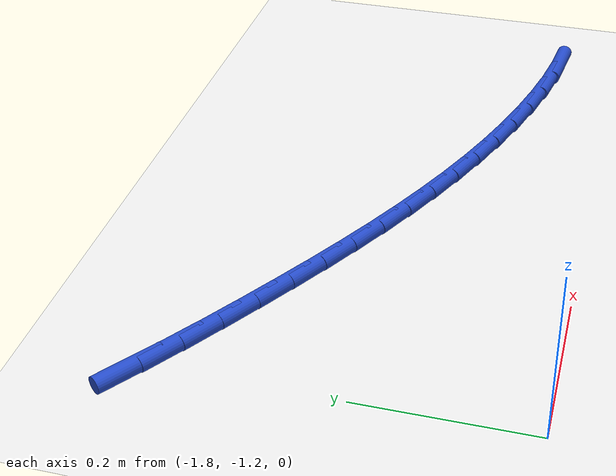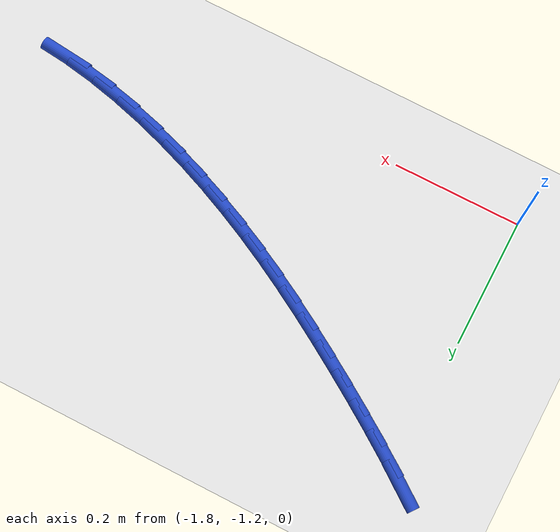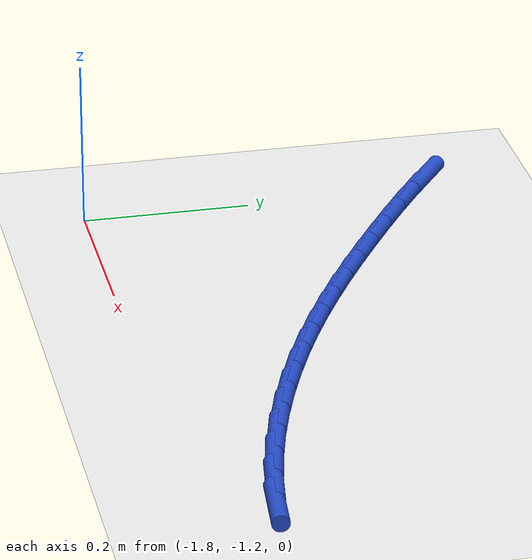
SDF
<sdf version="1.6">
 <world name="default">
  <model name="ground_plane">
   <static>1</static>
   <link name="link">
    <collision name="collision">
     <geometry><plane><normal>0 0 1</normal><size>100 100</size></plane></geometry>
     <surface><friction><ode><mu>100</mu><mu2>50</mu2></ode></friction></surface>
    </collision>
    <visual name="visual">
     <cast_shadows>0</cast_shadows>
     <geometry><plane><normal>0 0 1</normal><size>100 100</size></plane></geometry>
     <material>
      <script><uri>file://media/materials/scripts/gazebo.material</uri><name>Gazebo/WhiteGlow</name></script>
     </material>
    </visual>
   </link>
  </model>
  <model name="line">
   <link name="link_87">
    <pose>-1.8162031321704577 -0.7763112333776243 0.01 0 1.57 -0.6291660363744604</pose>
    <collision name="collision">
     <geometry><cylinder><radius>0.01</radius><length>0.08</length></cylinder></geometry>
    </collision>
    <visual name="visual">
     <material>
      <script><name>Gazebo/Blue</name><uri>file://media/materials/scripts/gazebo.material</uri></script>
     </material>
     <geometry><cylinder><radius>0.01</radius><length>0.08</length></cylinder></geometry>
    </visual>
   </link>
   <link name="link_88">
    <pose>-1.7759090140779579 -0.805638831742299 0.01 0 1.57 -0.6009837653020444</pose>
    <collision name="collision">
     <geometry><cylinder><radius>0.01</radius><length>0.08</length></cylinder></geometry>
    </collision>
    <visual name="visual">
     <material>
      <script><name>Gazebo/Blue</name><uri>file://media/materials/scripts/gazebo.material</uri></script>
     </material>
     <geometry><cylinder><radius>0.01</radius><length>0.08</length></cylinder></geometry>
    </visual>
   </link>
   <link name="link_89">
    <pose>-1.7347312390451963 -0.8338695727504573 0.01 0 1.57 -0.5806274580564076</pose>
    <collision name="collision">
     <geometry><cylinder><radius>0.01</radius><length>0.08</length></cylinder></geometry>
    </collision>
    <visual name="visual">
     <material>
      <script><name>Gazebo/Blue</name><uri>file://media/materials/scripts/gazebo.material</uri></script>
     </material>
     <geometry><cylinder><radius>0.01</radius><length>0.08</length></cylinder></geometry>
    </visual>
   </link>
   <link name="link_90">
    <pose>-1.6932452028047285 -0.8610871343989953 0.01 0 1.57 -0.56701742146407</pose>
    <collision name="collision">
     <geometry><cylinder><radius>0.01</radius><length>0.08</length></cylinder></geometry>
    </collision>
    <visual name="visual">
     <material>
      <script><name>Gazebo/Blue</name><uri>file://media/materials/scripts/gazebo.material</uri></script>
     </material>
     <geometry><cylinder><radius>0.01</radius><length>0.08</length></cylinder></geometry>
    </visual>
   </link>
   <link name="link_91">
    <pose>-1.6519755520268256 -0.8873663531905466 0.01 0 1.57 -0.5536417019840754</pose>
    <collision name="collision">
     <geometry><cylinder><radius>0.01</radius><length>0.08</length></cylinder></geometry>
    </collision>
    <visual name="visual">
     <material>
      <script><name>Gazebo/Blue</name><uri>file://media/materials/scripts/gazebo.material</uri></script>
     </material>
     <geometry><cylinder><radius>0.01</radius><length>0.08</length></cylinder></geometry>
    </visual>
   </link>
   <link name="link_92">
    <pose>-1.6109876943745698 -0.9127020570745732 0.01 0 1.57 -0.5370610337191966</pose>
    <collision name="collision">
     <geometry><cylinder><radius>0.01</radius><length>0.08</length></cylinder></geometry>
    </collision>
    <visual name="visual">
     <material>
      <script><name>Gazebo/Blue</name><uri>file://media/materials/scripts/gazebo.material</uri></script>
     </material>
     <geometry><cylinder><radius>0.01</radius><length>0.08</length></cylinder></geometry>
    </visual>
   </link>
   <link name="link_93">
    <pose>-1.5701029341095027 -0.9370465463413574 0.01 0 1.57 -0.517266465279519</pose>
    <collision name="collision">
     <geometry><cylinder><radius>0.01</radius><length>0.08</length></cylinder></geometry>
    </collision>
    <visual name="visual">
     <material>
      <script><name>Gazebo/Blue</name><uri>file://media/materials/scripts/gazebo.material</uri></script>
     </material>
     <geometry><cylinder><radius>0.01</radius><length>0.08</length></cylinder></geometry>
    </visual>
   </link>
   <link name="link_94">
    <pose>-1.5291403184806935 -0.960351728064795 0.01 0 1.57 -0.4943480638444496</pose>
    <collision name="collision">
     <geometry><cylinder><radius>0.01</radius><length>0.08</length></cylinder></geometry>
    </collision>
    <visual name="visual">
     <material>
      <script><name>Gazebo/Blue</name><uri>file://media/materials/scripts/gazebo.material</uri></script>
     </material>
     <geometry><cylinder><radius>0.01</radius><length>0.08</length></cylinder></geometry>
    </visual>
   </link>
   <link name="link_95">
    <pose>-1.4879188947372113 -0.982569509318783 0.01 0 1.57 -0.4684691104655196</pose>
    <collision name="collision">
     <geometry><cylinder><radius>0.01</radius><length>0.08</length></cylinder></geometry>
    </collision>
    <visual name="visual">
     <material>
      <script><name>Gazebo/Blue</name><uri>file://media/materials/scripts/gazebo.material</uri></script>
     </material>
     <geometry><cylinder><radius>0.01</radius><length>0.08</length></cylinder></geometry>
    </visual>
   </link>
   <link name="link_96">
    <pose>-1.4462577101281258 -1.003651797177216 0.01 0 1.57 -0.439868483487137</pose>
    <collision name="collision">
     <geometry><cylinder><radius>0.01</radius><length>0.08</length></cylinder></geometry>
    </collision>
    <visual name="visual">
     <material>
      <script><name>Gazebo/Blue</name><uri>file://media/materials/scripts/gazebo.material</uri></script>
     </material>
     <geometry><cylinder><radius>0.01</radius><length>0.08</length></cylinder></geometry>
    </visual>
   </link>
   <link name="link_97">
    <pose>-1.403975811902507 -1.0235504987139914 0.01 0 1.57 -0.4088585375798872</pose>
    <collision name="collision">
     <geometry><cylinder><radius>0.01</radius><length>0.08</length></cylinder></geometry>
    </collision>
    <visual name="visual">
     <material>
      <script><name>Gazebo/Blue</name><uri>file://media/materials/scripts/gazebo.material</uri></script>
     </material>
     <geometry><cylinder><radius>0.01</radius><length>0.08</length></cylinder></geometry>
    </visual>
   </link>
   <link name="link_98">
    <pose>-1.3608922473094236 -1.0422175210030047 0.01 0 1.57 -0.3758176955161401</pose>
    <collision name="collision">
     <geometry><cylinder><radius>0.01</radius><length>0.08</length></cylinder></geometry>
    </collision>
    <visual name="visual">
     <material>
      <script><name>Gazebo/Blue</name><uri>file://media/materials/scripts/gazebo.material</uri></script>
     </material>
     <geometry><cylinder><radius>0.01</radius><length>0.08</length></cylinder></geometry>
    </visual>
   </link>
   <link name="link_99">
    <pose>-1.316826063597945 -1.0596047711181524 0.01 0 1.57 -0.3410289061866716</pose>
    <collision name="collision">
     <geometry><cylinder><radius>0.01</radius><length>0.08</length></cylinder></geometry>
    </collision>
    <visual name="visual">
     <material>
      <script><name>Gazebo/Blue</name><uri>file://media/materials/scripts/gazebo.material</uri></script>
     </material>
     <geometry><cylinder><radius>0.01</radius><length>0.08</length></cylinder></geometry>
    </visual>
   </link>
   <link name="link_100">
    <pose>-1.2716273048063598 -1.075645582492141 0.01 0 1.57 -0.30337916253544367</pose>
    <collision name="collision">
     <geometry><cylinder><radius>0.01</radius><length>0.08</length></cylinder></geometry>
    </collision>
    <visual name="visual">
     <material>
      <script><name>Gazebo/Blue</name><uri>file://media/materials/scripts/gazebo.material</uri></script>
     </material>
     <geometry><cylinder><radius>0.01</radius><length>0.08</length></cylinder></geometry>
    </visual>
   </link>
   <link name="link_101">
    <pose>-1.2254153660735239 -1.090111890205725 0.01 0 1.57 -0.26171829242286</pose>
    <collision name="collision">
     <geometry><cylinder><radius>0.01</radius><length>0.08</length></cylinder></geometry>
    </collision>
    <visual name="visual">
     <material>
      <script><name>Gazebo/Blue</name><uri>file://media/materials/scripts/gazebo.material</uri></script>
     </material>
     <geometry><cylinder><radius>0.01</radius><length>0.08</length></cylinder></geometry>
    </visual>
   </link>
   <link name="link_102">
    <pose>-1.1784481452029172 -1.1026926369116914 0.01 0 1.57 -0.2153740374861409</pose>
    <collision name="collision">
     <geometry><cylinder><radius>0.01</radius><length>0.08</length></cylinder></geometry>
    </collision>
    <visual name="visual">
     <material>
      <script><name>Gazebo/Blue</name><uri>file://media/materials/scripts/gazebo.material</uri></script>
     </material>
     <geometry><cylinder><radius>0.01</radius><length>0.08</length></cylinder></geometry>
    </visual>
   </link>
   <link name="link_103">
    <pose>-1.1309846791536937 -1.1130760826673298 0.01 0 1.57 -0.16360403947503574</pose>
    <collision name="collision">
     <geometry><cylinder><radius>0.01</radius><length>0.08</length></cylinder></geometry>
    </collision>
    <visual name="visual">
     <material>
      <script><name>Gazebo/Blue</name><uri>file://media/materials/scripts/gazebo.material</uri></script>
     </material>
     <geometry><cylinder><radius>0.01</radius><length>0.08</length></cylinder></geometry>
    </visual>
   </link>
   <link name="link_104">
    <pose>-1.0832840048850065 -1.1209504875299308 0.01 0 1.57 -0.10559873076347513</pose>
    <collision name="collision">
     <geometry><cylinder><radius>0.01</radius><length>0.08</length></cylinder></geometry>
    </collision>
    <visual name="visual">
     <material>
      <script><name>Gazebo/Blue</name><uri>file://media/materials/scripts/gazebo.material</uri></script>
     </material>
     <geometry><cylinder><radius>0.01</radius><length>0.08</length></cylinder></geometry>
    </visual>
   </link>
  </model>
 </world>
</sdf>
